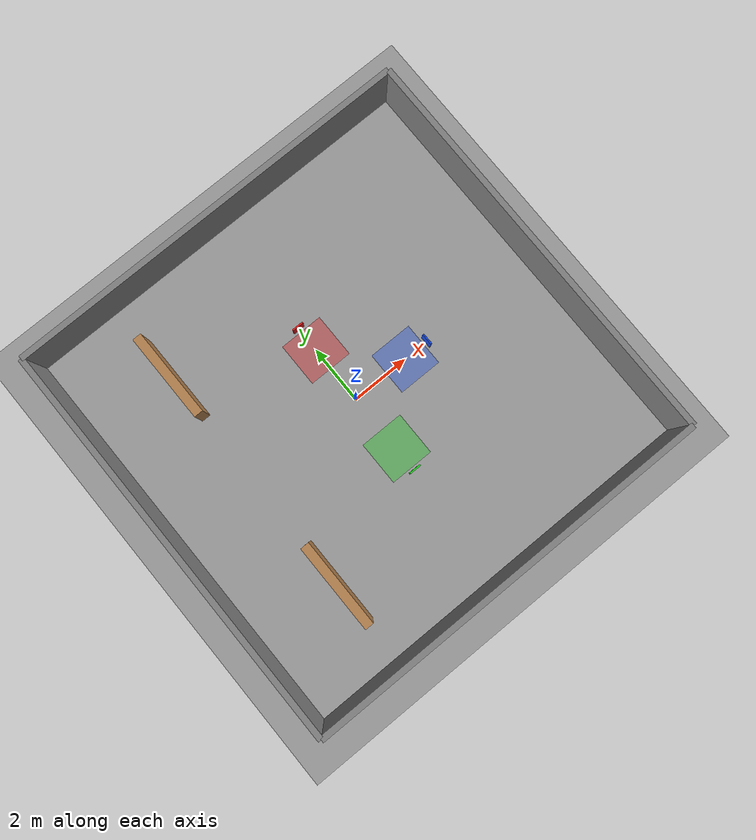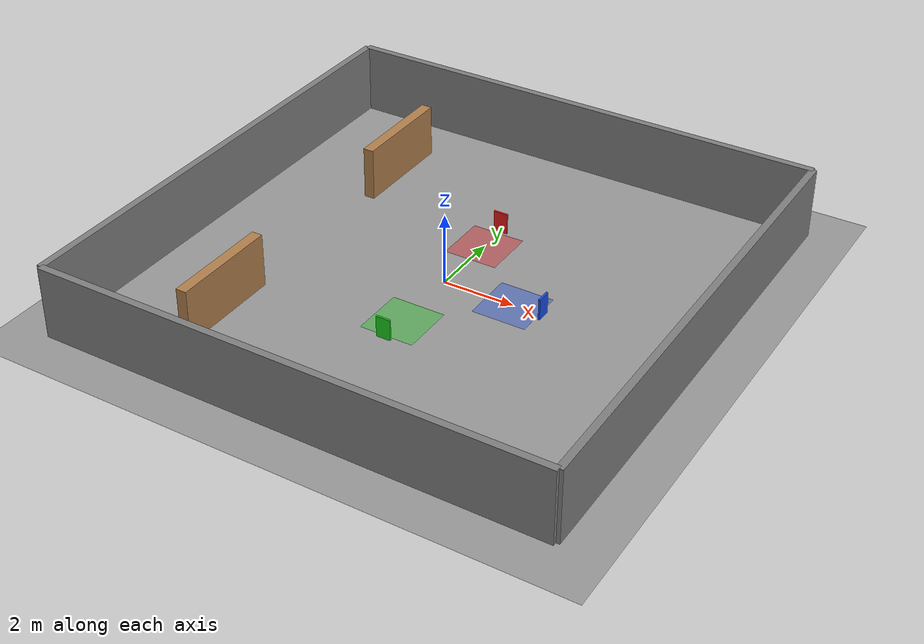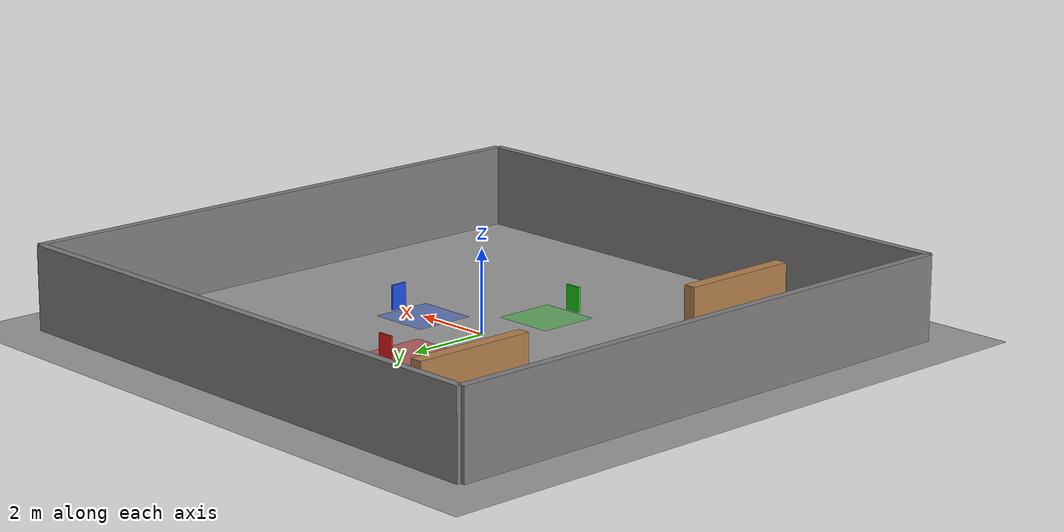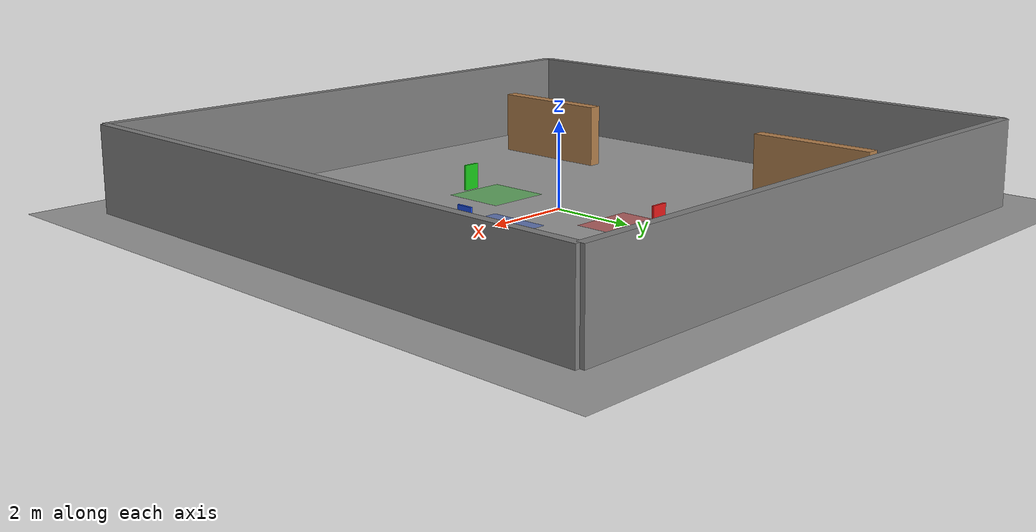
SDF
<?xml version='1.0' encoding='UTF-8'?>
<sdf version='1.7'>
  <world name='gazebo_world'>

    <physics name='1ms' type='ignored'>
      <max_step_size>0.01</max_step_size>
      <real_time_factor>1</real_time_factor>
    </physics>

    <plugin name='ignition::gazebo::systems::Physics'
            filename='libignition-gazebo-physics-system.so'/>
    <plugin name='ignition::gazebo::systems::UserCommands'
            filename='libignition-gazebo-user-commands-system.so'/>
    <plugin name='ignition::gazebo::systems::SceneBroadcaster'
            filename='libignition-gazebo-scene-broadcaster-system.so'/>
    <plugin name='ignition::gazebo::systems::Imu'
            filename='ignition-gazebo-imu-system'/>
    <plugin name='ignition::gazebo::systems::Sensors'
            filename='ignition-gazebo-sensors-system'>
      <render_engine>ogre2</render_engine>
    </plugin>

    <scene>
      <ambient>1 1 1 1</ambient>
      <background>0.2 0.2 0.3 1</background>
      <shadows>1</shadows>
      <grid>0</grid>
    </scene>

    <!-- ── Ground plane ─────────────────────────────────────────────────── -->
    <model name='ground_plane'>
      <static>1</static>
      <link name='link'>
        <collision name='collision'>
          <geometry>
            <plane>
              <normal>0 0 1</normal>
              <size>30 30</size>
            </plane>
          </geometry>
          <surface>
            <friction>
              <ode>
                <mu>0.7</mu>
                <mu2>0.7</mu2>
              </ode>
            </friction>
          </surface>
        </collision>
        <visual name='visual'>
          <geometry>
            <plane>
              <normal>0 0 1</normal>
              <size>30 30</size>
            </plane>
          </geometry>
          <material>
            <ambient>0.6 0.6 0.6 1</ambient>
            <diffuse>0.6 0.6 0.6 1</diffuse>
          </material>
        </visual>
      </link>
      <pose>0 0 0 0 0 0</pose>
    </model>

    <model name='friction_zone_A_low'>
      <static>1</static>
      <pose>2.0 0.0 0.002 0 0 0</pose>
      <link name='link'>
        <collision name='collision'>
          <geometry>
            <box><size>1.5 1.5 0.001</size></box>
          </geometry>
          <surface>
            <friction>
              <ode>
                <mu>0.1</mu>
                <mu2>0.1</mu2>
              </ode>
            </friction>
          </surface>
        </collision>
        <visual name='visual'>
          <geometry>
            <box><size>1.5 1.5 0.001</size></box>
          </geometry>
          <material>
            <ambient>0.1 0.3 0.9 0.4</ambient>
            <diffuse>0.1 0.3 0.9 0.4</diffuse>
            <emissive>0.0 0.1 0.4 0.4</emissive>
          </material>
          <transparency>0.5</transparency>
        </visual>
      </link>
    </model>

    <model name='friction_zone_B_high'>
      <static>1</static>
      <pose>0.0 2.0 0.002 0 0 0</pose>
      <link name='link'>
        <collision name='collision'>
          <geometry>
            <box><size>1.5 1.5 0.001</size></box>
          </geometry>
          <surface>
            <friction>
              <ode>
                <mu>3.0</mu>
                <mu2>3.0</mu2>
              </ode>
            </friction>
          </surface>
        </collision>
        <visual name='visual'>
          <geometry>
            <box><size>1.5 1.5 0.001</size></box>
          </geometry>
          <material>
            <ambient>0.9 0.1 0.1 0.4</ambient>
            <diffuse>0.9 0.1 0.1 0.4</diffuse>
            <emissive>0.4 0.0 0.0 0.4</emissive>
          </material>
          <transparency>0.5</transparency>
        </visual>
      </link>
    </model>

    <model name='friction_zone_C_normal'>
      <static>1</static>
      <pose>0.0 -2.0 0.002 0 0 0</pose>
      <link name='link'>
        <collision name='collision'>
          <geometry>
            <box><size>1.5 1.5 0.001</size></box>
          </geometry>
          <surface>
            <friction>
              <ode>
                <mu>0.7</mu>
                <mu2>0.7</mu2>
              </ode>
            </friction>
          </surface>
        </collision>
        <visual name='visual'>
          <geometry>
            <box><size>1.5 1.5 0.001</size></box>
          </geometry>
          <material>
            <ambient>0.1 0.8 0.1 0.4</ambient>
            <diffuse>0.1 0.8 0.1 0.4</diffuse>
            <emissive>0.0 0.3 0.0 0.4</emissive>
          </material>
          <transparency>0.5</transparency>
        </visual>
      </link>
    </model>

    <!-- ── Zone labels (thin vertical panels acting as signs) ──────────── -->
    <model name='label_A'>
      <static>1</static>
      <pose>2.85 0.0 0.3 0 0 0</pose>
      <link name='link'>
        <visual name='visual'>
          <geometry><box><size>0.05 0.4 0.6</size></box></geometry>
          <material>
            <ambient>0.1 0.3 0.9 1</ambient>
            <diffuse>0.1 0.3 0.9 1</diffuse>
          </material>
        </visual>
      </link>
    </model>

    <model name='label_B'>
      <static>1</static>
      <pose>0.0 2.85 0.3 0 0 0</pose>
      <link name='link'>
        <visual name='visual'>
          <geometry><box><size>0.4 0.05 0.6</size></box></geometry>
          <material>
            <ambient>0.9 0.1 0.1 1</ambient>
            <diffuse>0.9 0.1 0.1 1</diffuse>
          </material>
        </visual>
      </link>
    </model>

    <model name='label_C'>
      <static>1</static>
      <pose>0.0 -2.85 0.3 0 0 0</pose>
      <link name='link'>
        <visual name='visual'>
          <geometry><box><size>0.4 0.05 0.6</size></box></geometry>
          <material>
            <ambient>0.1 0.8 0.1 1</ambient>
            <diffuse>0.1 0.8 0.1 1</diffuse>
          </material>
        </visual>
      </link>
    </model>

    <!-- ── Inspection obstacles (walls / narrow passage) ────────────────── -->
    <model name='wall_north'>
      <static>1</static>
      <pose>0 7 1 0 0 0</pose>
      <link name='link'>
        <collision name='c'><geometry><box><size>14 0.2 2</size></box></geometry></collision>
        <visual name='v'>
          <geometry><box><size>14 0.2 2</size></box></geometry>
          <material><ambient>0.5 0.5 0.5 1</ambient></material>
        </visual>
      </link>
    </model>

    <model name='wall_south'>
      <static>1</static>
      <pose>0 -7 1 0 0 0</pose>
      <link name='link'>
        <collision name='c'><geometry><box><size>14 0.2 2</size></box></geometry></collision>
        <visual name='v'>
          <geometry><box><size>14 0.2 2</size></box></geometry>
          <material><ambient>0.5 0.5 0.5 1</ambient></material>
        </visual>
      </link>
    </model>

    <model name='wall_east'>
      <static>1</static>
      <pose>7 0 1 0 0 0</pose>
      <link name='link'>
        <collision name='c'><geometry><box><size>0.2 14 2</size></box></geometry></collision>
        <visual name='v'>
          <geometry><box><size>0.2 14 2</size></box></geometry>
          <material><ambient>0.5 0.5 0.5 1</ambient></material>
        </visual>
      </link>
    </model>

    <model name='wall_west'>
      <static>1</static>
      <pose>-7 0 1 0 0 0</pose>
      <link name='link'>
        <collision name='c'><geometry><box><size>0.2 14 2</size></box></geometry></collision>
        <visual name='v'>
          <geometry><box><size>0.2 14 2</size></box></geometry>
          <material><ambient>0.5 0.5 0.5 1</ambient></material>
        </visual>
      </link>
    </model>

    <!-- ── Inspection shelf obstacles (narrow passage at x=-3) ─────────── -->
    <model name='shelf_left'>
      <static>1</static>
      <pose>-4 -4 0.75 0 0 0</pose>
      <link name='link'>
        <collision name='c'><geometry><box><size>0.3 3 1.5</size></box></geometry></collision>
        <visual name='v'>
          <geometry><box><size>0.3 3 1.5</size></box></geometry>
          <material><ambient>0.7 0.5 0.3 1</ambient></material>
        </visual>
      </link>
    </model>

    <model name='shelf_right'>
      <static>1</static>
      <pose>-4 4 0.75 0 0 0</pose>
      <link name='link'>
        <collision name='c'><geometry><box><size>0.3 3 1.5</size></box></geometry></collision>
        <visual name='v'>
          <geometry><box><size>0.3 3 1.5</size></box></geometry>
          <material><ambient>0.7 0.5 0.3 1</ambient></material>
        </visual>
      </link>
    </model>

  </world>
</sdf>
